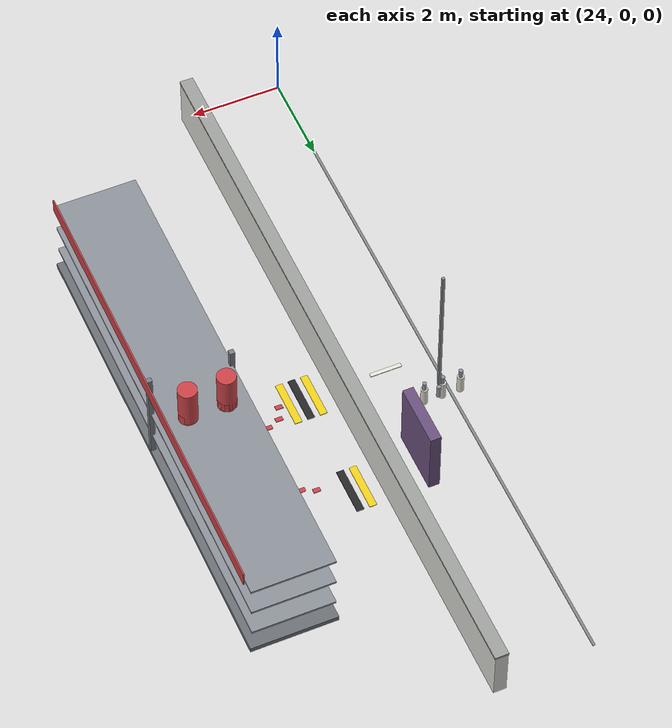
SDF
<sdf version="1.10">
 <world name="textile_mill">
  <model name="wall_east">
   <static>true</static>
   <pose>26.140 8.000 0.600 0 0 0</pose>
   <link name="l">
    <collision name="c"><geometry><box><size>0.280 16.000 1.200</size></box></geometry></collision>
    <visual name="v">
     <geometry><box><size>0.280 16.000 1.200</size></box></geometry>
     <material>
      <ambient>0.860 0.860 0.840 1.0</ambient>
      <diffuse>0.860 0.860 0.840 1.0</diffuse>
      <specular>0.18 0.18 0.18 1</specular>
      <pbr><metal><roughness>0.9</roughness><metalness>0.0</metalness></metal></pbr>
     </material>
    </visual>
   </link>
  </model>
  <model name="cut_e">
   <static>true</static>
   <pose>26.140 8.000 1.220 0 0 0</pose>
   <link name="l">
    <collision name="c"><geometry><box><size>0.300 16.000 0.050</size></box></geometry></collision>
    <visual name="v">
     <geometry><box><size>0.300 16.000 0.050</size></box></geometry>
     <material>
      <ambient>0.620 0.630 0.620 1.0</ambient>
      <diffuse>0.620 0.630 0.620 1.0</diffuse>
      <specular>0.18 0.18 0.18 1</specular>
      <pbr><metal><roughness>0.65</roughness><metalness>0.0</metalness></metal></pbr>
     </material>
    </visual>
   </link>
  </model>
  <model name="clnz_roving_1_4">
   <static>true</static>
   <pose>25.000 10.500 2.380 0.0000 0.0000 0.0000</pose>
   <link name="l">
    <collision name="c">
     <geometry><cylinder><radius>0.045</radius><length>0.300</length></cylinder></geometry>
    </collision>
    <visual name="v">
     <geometry><cylinder><radius>0.045</radius><length>0.300</length></cylinder></geometry>
     <material>
      <ambient>0.580 0.600 0.620 1.0</ambient>
      <diffuse>0.580 0.600 0.620 1.0</diffuse>
      <specular>0.18 0.18 0.18 1</specular>
      <pbr><metal><roughness>0.35</roughness><metalness>0.5</metalness></metal></pbr>
     </material>
    </visual>
   </link>
  </model>
  <model name="clnh_roving_1_2">
   <static>true</static>
   <pose>25.000 10.500 4.310 0 0 0</pose>
   <link name="l">
    <collision name="c"><geometry><box><size>0.060 0.060 3.380</size></box></geometry></collision>
    <visual name="v">
     <geometry><box><size>0.060 0.060 3.380</size></box></geometry>
     <material>
      <ambient>0.550 0.570 0.590 1.0</ambient>
      <diffuse>0.550 0.570 0.590 1.0</diffuse>
      <specular>0.18 0.18 0.18 1</specular>
      <pbr><metal><roughness>0.65</roughness><metalness>0.6</metalness></metal></pbr>
     </material>
    </visual>
   </link>
  </model>
  <model name="joint_x_4">
   <static>true</static>
   <pose>24.000 8.000 0.010 0 0 0</pose>
   <link name="l">
    <visual name="v">
     <geometry><box><size>0.060 15.600 0.016</size></box></geometry>
     <material>
      <ambient>0.520 0.530 0.540 1.0</ambient>
      <diffuse>0.520 0.530 0.540 1.0</diffuse>
      <specular>0.18 0.18 0.18 1</specular>
      <pbr><metal><roughness>0.65</roughness><metalness>0.0</metalness></metal></pbr>
     </material>
    </visual>
   </link>
  </model>
  <model name="dash_16">
   <static>true</static>
   <pose>25.000 8.000 0.012 0 0 0</pose>
   <link name="l">
    <visual name="v">
     <geometry><box><size>0.700 0.090 0.020</size></box></geometry>
     <material>
      <ambient>0.900 0.900 0.860 1.0</ambient>
      <diffuse>0.900 0.900 0.860 1.0</diffuse>
      <specular>0.18 0.18 0.18 1</specular>
      <pbr><metal><roughness>0.65</roughness><metalness>0.0</metalness></metal></pbr>
     </material>
    </visual>
   </link>
  </model>
  <model name="slot_storage_red_slot_1_0">
   <static>true</static>
   <pose>28.200 8.000 0.012 0 0 0</pose>
   <link name="l">
    <visual name="v">
     <geometry><box><size>0.160 0.100 0.020</size></box></geometry>
     <material>
      <ambient>0.800 0.260 0.280 1.0</ambient>
      <diffuse>0.800 0.260 0.280 1.0</diffuse>
      <specular>0.18 0.18 0.18 1</specular>
      <pbr><metal><roughness>0.65</roughness><metalness>0.0</metalness></metal></pbr>
     </material>
    </visual>
   </link>
  </model>
  <model name="slot_storage_red_slot_1_1">
   <static>true</static>
   <pose>28.083 8.283 0.012 0 0 0</pose>
   <link name="l">
    <visual name="v">
     <geometry><box><size>0.160 0.100 0.020</size></box></geometry>
     <material>
      <ambient>0.800 0.260 0.280 1.0</ambient>
      <diffuse>0.800 0.260 0.280 1.0</diffuse>
      <specular>0.18 0.18 0.18 1</specular>
      <pbr><metal><roughness>0.65</roughness><metalness>0.0</metalness></metal></pbr>
     </material>
    </visual>
   </link>
  </model>
  <model name="slot_storage_red_slot_1_2">
   <static>true</static>
   <pose>27.800 8.400 0.012 0 0 0</pose>
   <link name="l">
    <visual name="v">
     <geometry><box><size>0.160 0.100 0.020</size></box></geometry>
     <material>
      <ambient>0.800 0.260 0.280 1.0</ambient>
      <diffuse>0.800 0.260 0.280 1.0</diffuse>
      <specular>0.18 0.18 0.18 1</specular>
      <pbr><metal><roughness>0.65</roughness><metalness>0.0</metalness></metal></pbr>
     </material>
    </visual>
   </link>
  </model>
  <model name="slot_storage_red_slot_1_3">
   <static>true</static>
   <pose>27.517 8.283 0.012 0 0 0</pose>
   <link name="l">
    <visual name="v">
     <geometry><box><size>0.160 0.100 0.020</size></box></geometry>
     <material>
      <ambient>0.800 0.260 0.280 1.0</ambient>
      <diffuse>0.800 0.260 0.280 1.0</diffuse>
      <specular>0.18 0.18 0.18 1</specular>
      <pbr><metal><roughness>0.65</roughness><metalness>0.0</metalness></metal></pbr>
     </material>
    </visual>
   </link>
  </model>
  <model name="slot_storage_red_slot_1_4">
   <static>true</static>
   <pose>27.400 8.000 0.012 0 0 0</pose>
   <link name="l">
    <visual name="v">
     <geometry><box><size>0.160 0.100 0.020</size></box></geometry>
     <material>
      <ambient>0.800 0.260 0.280 1.0</ambient>
      <diffuse>0.800 0.260 0.280 1.0</diffuse>
      <specular>0.18 0.18 0.18 1</specular>
      <pbr><metal><roughness>0.65</roughness><metalness>0.0</metalness></metal></pbr>
     </material>
    </visual>
   </link>
  </model>
  <model name="slot_storage_red_slot_2_5">
   <static>true</static>
   <pose>27.517 10.217 0.012 0 0 0</pose>
   <link name="l">
    <visual name="v">
     <geometry><box><size>0.160 0.100 0.020</size></box></geometry>
     <material>
      <ambient>0.800 0.260 0.280 1.0</ambient>
      <diffuse>0.800 0.260 0.280 1.0</diffuse>
      <specular>0.18 0.18 0.18 1</specular>
      <pbr><metal><roughness>0.65</roughness><metalness>0.0</metalness></metal></pbr>
     </material>
    </visual>
   </link>
  </model>
  <model name="slot_storage_red_slot_2_6">
   <static>true</static>
   <pose>27.800 10.100 0.012 0 0 0</pose>
   <link name="l">
    <visual name="v">
     <geometry><box><size>0.160 0.100 0.020</size></box></geometry>
     <material>
      <ambient>0.800 0.260 0.280 1.0</ambient>
      <diffuse>0.800 0.260 0.280 1.0</diffuse>
      <specular>0.18 0.18 0.18 1</specular>
      <pbr><metal><roughness>0.65</roughness><metalness>0.0</metalness></metal></pbr>
     </material>
    </visual>
   </link>
  </model>
  <model name="slot_storage_red_slot_2_7">
   <static>true</static>
   <pose>28.083 10.217 0.012 0 0 0</pose>
   <link name="l">
    <visual name="v">
     <geometry><box><size>0.160 0.100 0.020</size></box></geometry>
     <material>
      <ambient>0.800 0.260 0.280 1.0</ambient>
      <diffuse>0.800 0.260 0.280 1.0</diffuse>
      <specular>0.18 0.18 0.18 1</specular>
      <pbr><metal><roughness>0.65</roughness><metalness>0.0</metalness></metal></pbr>
     </material>
    </visual>
   </link>
  </model>
  <model name="hz_red_1_0">
   <static>true</static>
   <pose>27.180 8.000 0.012 0 0 0</pose>
   <link name="l">
    <visual name="v">
     <geometry><box><size>0.160 1.050 0.020</size></box></geometry>
     <material>
      <ambient>0.950 0.820 0.100 1.0</ambient>
      <diffuse>0.950 0.820 0.100 1.0</diffuse>
      <specular>0.18 0.18 0.18 1</specular>
      <pbr><metal><roughness>0.65</roughness><metalness>0.0</metalness></metal></pbr>
     </material>
    </visual>
   </link>
  </model>
  <model name="hz_red_1_1">
   <static>true</static>
   <pose>26.900 8.000 0.012 0 0 0</pose>
   <link name="l">
    <visual name="v">
     <geometry><box><size>0.160 1.050 0.020</size></box></geometry>
     <material>
      <ambient>0.150 0.150 0.160 1.0</ambient>
      <diffuse>0.150 0.150 0.160 1.0</diffuse>
      <specular>0.18 0.18 0.18 1</specular>
      <pbr><metal><roughness>0.65</roughness><metalness>0.0</metalness></metal></pbr>
     </material>
    </visual>
   </link>
  </model>
  <model name="hz_red_1_2">
   <static>true</static>
   <pose>26.620 8.000 0.012 0 0 0</pose>
   <link name="l">
    <visual name="v">
     <geometry><box><size>0.160 1.050 0.020</size></box></geometry>
     <material>
      <ambient>0.950 0.820 0.100 1.0</ambient>
      <diffuse>0.950 0.820 0.100 1.0</diffuse>
      <specular>0.18 0.18 0.18 1</specular>
      <pbr><metal><roughness>0.65</roughness><metalness>0.0</metalness></metal></pbr>
     </material>
    </visual>
   </link>
  </model>
  <model name="hz_red_2_1">
   <static>true</static>
   <pose>26.900 10.500 0.012 0 0 0</pose>
   <link name="l">
    <visual name="v">
     <geometry><box><size>0.160 1.050 0.020</size></box></geometry>
     <material>
      <ambient>0.150 0.150 0.160 1.0</ambient>
      <diffuse>0.150 0.150 0.160 1.0</diffuse>
      <specular>0.18 0.18 0.18 1</specular>
      <pbr><metal><roughness>0.65</roughness><metalness>0.0</metalness></metal></pbr>
     </material>
    </visual>
   </link>
  </model>
  <model name="hz_red_2_2">
   <static>true</static>
   <pose>26.620 10.500 0.012 0 0 0</pose>
   <link name="l">
    <visual name="v">
     <geometry><box><size>0.160 1.050 0.020</size></box></geometry>
     <material>
      <ambient>0.950 0.820 0.100 1.0</ambient>
      <diffuse>0.950 0.820 0.100 1.0</diffuse>
      <specular>0.18 0.18 0.18 1</specular>
      <pbr><metal><roughness>0.65</roughness><metalness>0.0</metalness></metal></pbr>
     </material>
    </visual>
   </link>
  </model>
  <model name="roving_machine_1_bob_0_4">
   <static>true</static>
   <pose>24.300 10.060 1.740 0.0000 0.0000 0.0000</pose>
   <link name="l">
    <collision name="c">
     <geometry><cylinder><radius>0.075</radius><length>0.440</length></cylinder></geometry>
    </collision>
    <visual name="v">
     <geometry><cylinder><radius>0.075</radius><length>0.440</length></cylinder></geometry>
     <material>
      <ambient>0.860 0.840 0.800 1.0</ambient>
      <diffuse>0.860 0.840 0.800 1.0</diffuse>
      <specular>0.18 0.18 0.18 1</specular>
      <pbr><metal><roughness>0.65</roughness><metalness>0.0</metalness></metal></pbr>
     </material>
    </visual>
   </link>
  </model>
  <model name="roving_machine_1_fly_0_4">
   <static>true</static>
   <pose>24.300 10.060 2.020 0.0000 0.0000 0.0000</pose>
   <link name="l">
    <collision name="c">
     <geometry><cylinder><radius>0.045</radius><length>0.260</length></cylinder></geometry>
    </collision>
    <visual name="v">
     <geometry><cylinder><radius>0.045</radius><length>0.260</length></cylinder></geometry>
     <material>
      <ambient>0.550 0.570 0.600 1.0</ambient>
      <diffuse>0.550 0.570 0.600 1.0</diffuse>
      <specular>0.18 0.18 0.18 1</specular>
      <pbr><metal><roughness>0.25</roughness><metalness>0.7</metalness></metal></pbr>
     </material>
    </visual>
   </link>
  </model>
  <model name="roving_machine_1_bob_0_5">
   <static>true</static>
   <pose>24.700 10.060 1.740 0.0000 0.0000 0.0000</pose>
   <link name="l">
    <collision name="c">
     <geometry><cylinder><radius>0.075</radius><length>0.440</length></cylinder></geometry>
    </collision>
    <visual name="v">
     <geometry><cylinder><radius>0.075</radius><length>0.440</length></cylinder></geometry>
     <material>
      <ambient>0.860 0.840 0.800 1.0</ambient>
      <diffuse>0.860 0.840 0.800 1.0</diffuse>
      <specular>0.18 0.18 0.18 1</specular>
      <pbr><metal><roughness>0.65</roughness><metalness>0.0</metalness></metal></pbr>
     </material>
    </visual>
   </link>
  </model>
  <model name="roving_machine_1_fly_0_5">
   <static>true</static>
   <pose>24.700 10.060 2.020 0.0000 0.0000 0.0000</pose>
   <link name="l">
    <collision name="c">
     <geometry><cylinder><radius>0.045</radius><length>0.260</length></cylinder></geometry>
    </collision>
    <visual name="v">
     <geometry><cylinder><radius>0.045</radius><length>0.260</length></cylinder></geometry>
     <material>
      <ambient>0.550 0.570 0.600 1.0</ambient>
      <diffuse>0.550 0.570 0.600 1.0</diffuse>
      <specular>0.18 0.18 0.18 1</specular>
      <pbr><metal><roughness>0.25</roughness><metalness>0.7</metalness></metal></pbr>
     </material>
    </visual>
   </link>
  </model>
  <model name="roving_machine_1_bob_0_6">
   <static>true</static>
   <pose>25.100 10.060 1.740 0.0000 0.0000 0.0000</pose>
   <link name="l">
    <collision name="c">
     <geometry><cylinder><radius>0.075</radius><length>0.440</length></cylinder></geometry>
    </collision>
    <visual name="v">
     <geometry><cylinder><radius>0.075</radius><length>0.440</length></cylinder></geometry>
     <material>
      <ambient>0.860 0.840 0.800 1.0</ambient>
      <diffuse>0.860 0.840 0.800 1.0</diffuse>
      <specular>0.18 0.18 0.18 1</specular>
      <pbr><metal><roughness>0.65</roughness><metalness>0.0</metalness></metal></pbr>
     </material>
    </visual>
   </link>
  </model>
  <model name="roving_machine_1_fly_0_6">
   <static>true</static>
   <pose>25.100 10.060 2.020 0.0000 0.0000 0.0000</pose>
   <link name="l">
    <collision name="c">
     <geometry><cylinder><radius>0.045</radius><length>0.260</length></cylinder></geometry>
    </collision>
    <visual name="v">
     <geometry><cylinder><radius>0.045</radius><length>0.260</length></cylinder></geometry>
     <material>
      <ambient>0.550 0.570 0.600 1.0</ambient>
      <diffuse>0.550 0.570 0.600 1.0</diffuse>
      <specular>0.18 0.18 0.18 1</specular>
      <pbr><metal><roughness>0.25</roughness><metalness>0.7</metalness></metal></pbr>
     </material>
    </visual>
   </link>
  </model>
  <model name="roving_machine_1_end_b">
   <static>true</static>
   <pose>25.350 10.500 1.000 0 0 0</pose>
   <link name="l">
    <collision name="c"><geometry><box><size>0.240 1.360 1.600</size></box></geometry></collision>
    <visual name="v">
     <geometry><box><size>0.240 1.360 1.600</size></box></geometry>
     <material>
      <ambient>0.420 0.320 0.500 1.0</ambient>
      <diffuse>0.420 0.320 0.500 1.0</diffuse>
      <specular>0.18 0.18 0.18 1</specular>
      <pbr><metal><roughness>0.65</roughness><metalness>0.0</metalness></metal></pbr>
     </material>
    </visual>
   </link>
  </model>
  <model name="rack_red_base">
   <static>true</static>
   <pose>29.300 8.000 0.060 0 0 0</pose>
   <link name="l">
    <collision name="c"><geometry><box><size>1.900 10.500 0.120</size></box></geometry></collision>
    <visual name="v">
     <geometry><box><size>1.900 10.500 0.120</size></box></geometry>
     <material>
      <ambient>0.420 0.440 0.460 1.0</ambient>
      <diffuse>0.420 0.440 0.460 1.0</diffuse>
      <specular>0.18 0.18 0.18 1</specular>
      <pbr><metal><roughness>0.65</roughness><metalness>0.5</metalness></metal></pbr>
     </material>
    </visual>
   </link>
  </model>
  <model name="rack_red_shelf_0">
   <static>true</static>
   <pose>29.300 8.000 0.620 0 0 0</pose>
   <link name="l">
    <collision name="c"><geometry><box><size>1.800 10.440 0.050</size></box></geometry></collision>
    <visual name="v">
     <geometry><box><size>1.800 10.440 0.050</size></box></geometry>
     <material>
      <ambient>0.550 0.570 0.600 1.0</ambient>
      <diffuse>0.550 0.570 0.600 1.0</diffuse>
      <specular>0.18 0.18 0.18 1</specular>
      <pbr><metal><roughness>0.4</roughness><metalness>0.55</metalness></metal></pbr>
     </material>
    </visual>
   </link>
  </model>
  <model name="rack_red_can_0_3_a">
   <static>true</static>
   <pose>28.882 8.890 1.120 0.0000 0.0000 0.0000</pose>
   <link name="l">
    <collision name="c">
     <geometry><cylinder><radius>0.205</radius><length>0.900</length></cylinder></geometry>
    </collision>
    <visual name="v">
     <geometry><cylinder><radius>0.205</radius><length>0.900</length></cylinder></geometry>
     <material>
      <ambient>0.800 0.260 0.280 1.0</ambient>
      <diffuse>0.800 0.260 0.280 1.0</diffuse>
      <specular>0.18 0.18 0.18 1</specular>
      <pbr><metal><roughness>0.6</roughness><metalness>0.0</metalness></metal></pbr>
     </material>
    </visual>
   </link>
  </model>
  <model name="rack_red_can_0_3_b">
   <static>true</static>
   <pose>29.718 8.890 1.120 0.0000 0.0000 0.0000</pose>
   <link name="l">
    <collision name="c">
     <geometry><cylinder><radius>0.205</radius><length>0.900</length></cylinder></geometry>
    </collision>
    <visual name="v">
     <geometry><cylinder><radius>0.205</radius><length>0.900</length></cylinder></geometry>
     <material>
      <ambient>0.800 0.260 0.280 1.0</ambient>
      <diffuse>0.800 0.260 0.280 1.0</diffuse>
      <specular>0.18 0.18 0.18 1</specular>
      <pbr><metal><roughness>0.6</roughness><metalness>0.0</metalness></metal></pbr>
     </material>
    </visual>
   </link>
  </model>
  <model name="rack_red_shelf_1">
   <static>true</static>
   <pose>29.300 8.000 1.320 0 0 0</pose>
   <link name="l">
    <collision name="c"><geometry><box><size>1.800 10.440 0.050</size></box></geometry></collision>
    <visual name="v">
     <geometry><box><size>1.800 10.440 0.050</size></box></geometry>
     <material>
      <ambient>0.550 0.570 0.600 1.0</ambient>
      <diffuse>0.550 0.570 0.600 1.0</diffuse>
      <specular>0.18 0.18 0.18 1</specular>
      <pbr><metal><roughness>0.4</roughness><metalness>0.55</metalness></metal></pbr>
     </material>
    </visual>
   </link>
  </model>
  <model name="rack_red_can_1_3_a">
   <static>true</static>
   <pose>28.882 8.890 1.820 0.0000 0.0000 0.0000</pose>
   <link name="l">
    <collision name="c">
     <geometry><cylinder><radius>0.205</radius><length>0.900</length></cylinder></geometry>
    </collision>
    <visual name="v">
     <geometry><cylinder><radius>0.205</radius><length>0.900</length></cylinder></geometry>
     <material>
      <ambient>0.800 0.260 0.280 1.0</ambient>
      <diffuse>0.800 0.260 0.280 1.0</diffuse>
      <specular>0.18 0.18 0.18 1</specular>
      <pbr><metal><roughness>0.6</roughness><metalness>0.0</metalness></metal></pbr>
     </material>
    </visual>
   </link>
  </model>
  <model name="rack_red_can_1_3_b">
   <static>true</static>
   <pose>29.718 8.890 1.820 0.0000 0.0000 0.0000</pose>
   <link name="l">
    <collision name="c">
     <geometry><cylinder><radius>0.205</radius><length>0.900</length></cylinder></geometry>
    </collision>
    <visual name="v">
     <geometry><cylinder><radius>0.205</radius><length>0.900</length></cylinder></geometry>
     <material>
      <ambient>0.800 0.260 0.280 1.0</ambient>
      <diffuse>0.800 0.260 0.280 1.0</diffuse>
      <specular>0.18 0.18 0.18 1</specular>
      <pbr><metal><roughness>0.6</roughness><metalness>0.0</metalness></metal></pbr>
     </material>
    </visual>
   </link>
  </model>
  <model name="rack_red_shelf_2">
   <static>true</static>
   <pose>29.300 8.000 2.020 0 0 0</pose>
   <link name="l">
    <collision name="c"><geometry><box><size>1.800 10.440 0.050</size></box></geometry></collision>
    <visual name="v">
     <geometry><box><size>1.800 10.440 0.050</size></box></geometry>
     <material>
      <ambient>0.550 0.570 0.600 1.0</ambient>
      <diffuse>0.550 0.570 0.600 1.0</diffuse>
      <specular>0.18 0.18 0.18 1</specular>
      <pbr><metal><roughness>0.4</roughness><metalness>0.55</metalness></metal></pbr>
     </material>
    </visual>
   </link>
  </model>
  <model name="rack_red_can_2_3_a">
   <static>true</static>
   <pose>28.882 8.890 2.520 0.0000 0.0000 0.0000</pose>
   <link name="l">
    <collision name="c">
     <geometry><cylinder><radius>0.205</radius><length>0.900</length></cylinder></geometry>
    </collision>
    <visual name="v">
     <geometry><cylinder><radius>0.205</radius><length>0.900</length></cylinder></geometry>
     <material>
      <ambient>0.800 0.260 0.280 1.0</ambient>
      <diffuse>0.800 0.260 0.280 1.0</diffuse>
      <specular>0.18 0.18 0.18 1</specular>
      <pbr><metal><roughness>0.6</roughness><metalness>0.0</metalness></metal></pbr>
     </material>
    </visual>
   </link>
  </model>
  <model name="rack_red_can_2_3_b">
   <static>true</static>
   <pose>29.718 8.890 2.520 0.0000 0.0000 0.0000</pose>
   <link name="l">
    <collision name="c">
     <geometry><cylinder><radius>0.205</radius><length>0.900</length></cylinder></geometry>
    </collision>
    <visual name="v">
     <geometry><cylinder><radius>0.205</radius><length>0.900</length></cylinder></geometry>
     <material>
      <ambient>0.800 0.260 0.280 1.0</ambient>
      <diffuse>0.800 0.260 0.280 1.0</diffuse>
      <specular>0.18 0.18 0.18 1</specular>
      <pbr><metal><roughness>0.6</roughness><metalness>0.0</metalness></metal></pbr>
     </material>
    </visual>
   </link>
  </model>
  <model name="rack_red_post_2_a">
   <static>true</static>
   <pose>28.410 8.000 1.220 0 0 0</pose>
   <link name="l">
    <collision name="c"><geometry><box><size>0.110 0.110 2.440</size></box></geometry></collision>
    <visual name="v">
     <geometry><box><size>0.110 0.110 2.440</size></box></geometry>
     <material>
      <ambient>0.480 0.500 0.530 1.0</ambient>
      <diffuse>0.480 0.500 0.530 1.0</diffuse>
      <specular>0.18 0.18 0.18 1</specular>
      <pbr><metal><roughness>0.65</roughness><metalness>0.5</metalness></metal></pbr>
     </material>
    </visual>
   </link>
  </model>
  <model name="rack_red_post_2_b">
   <static>true</static>
   <pose>30.190 8.000 1.220 0 0 0</pose>
   <link name="l">
    <collision name="c"><geometry><box><size>0.110 0.110 2.440</size></box></geometry></collision>
    <visual name="v">
     <geometry><box><size>0.110 0.110 2.440</size></box></geometry>
     <material>
      <ambient>0.480 0.500 0.530 1.0</ambient>
      <diffuse>0.480 0.500 0.530 1.0</diffuse>
      <specular>0.18 0.18 0.18 1</specular>
      <pbr><metal><roughness>0.65</roughness><metalness>0.5</metalness></metal></pbr>
     </material>
    </visual>
   </link>
  </model>
  <model name="rack_red_label">
   <static>true</static>
   <pose>30.270 8.000 2.300 0 0 0</pose>
   <link name="l">
    <collision name="c"><geometry><box><size>0.030 10.100 0.340</size></box></geometry></collision>
    <visual name="v">
     <geometry><box><size>0.030 10.100 0.340</size></box></geometry>
     <material>
      <ambient>0.800 0.260 0.280 1.0</ambient>
      <diffuse>0.800 0.260 0.280 1.0</diffuse>
      <specular>0.18 0.18 0.18 1</specular>
      <pbr><metal><roughness>0.65</roughness><metalness>0.0</metalness></metal></pbr>
     </material>
    </visual>
   </link>
  </model>
 </world>
</sdf>
